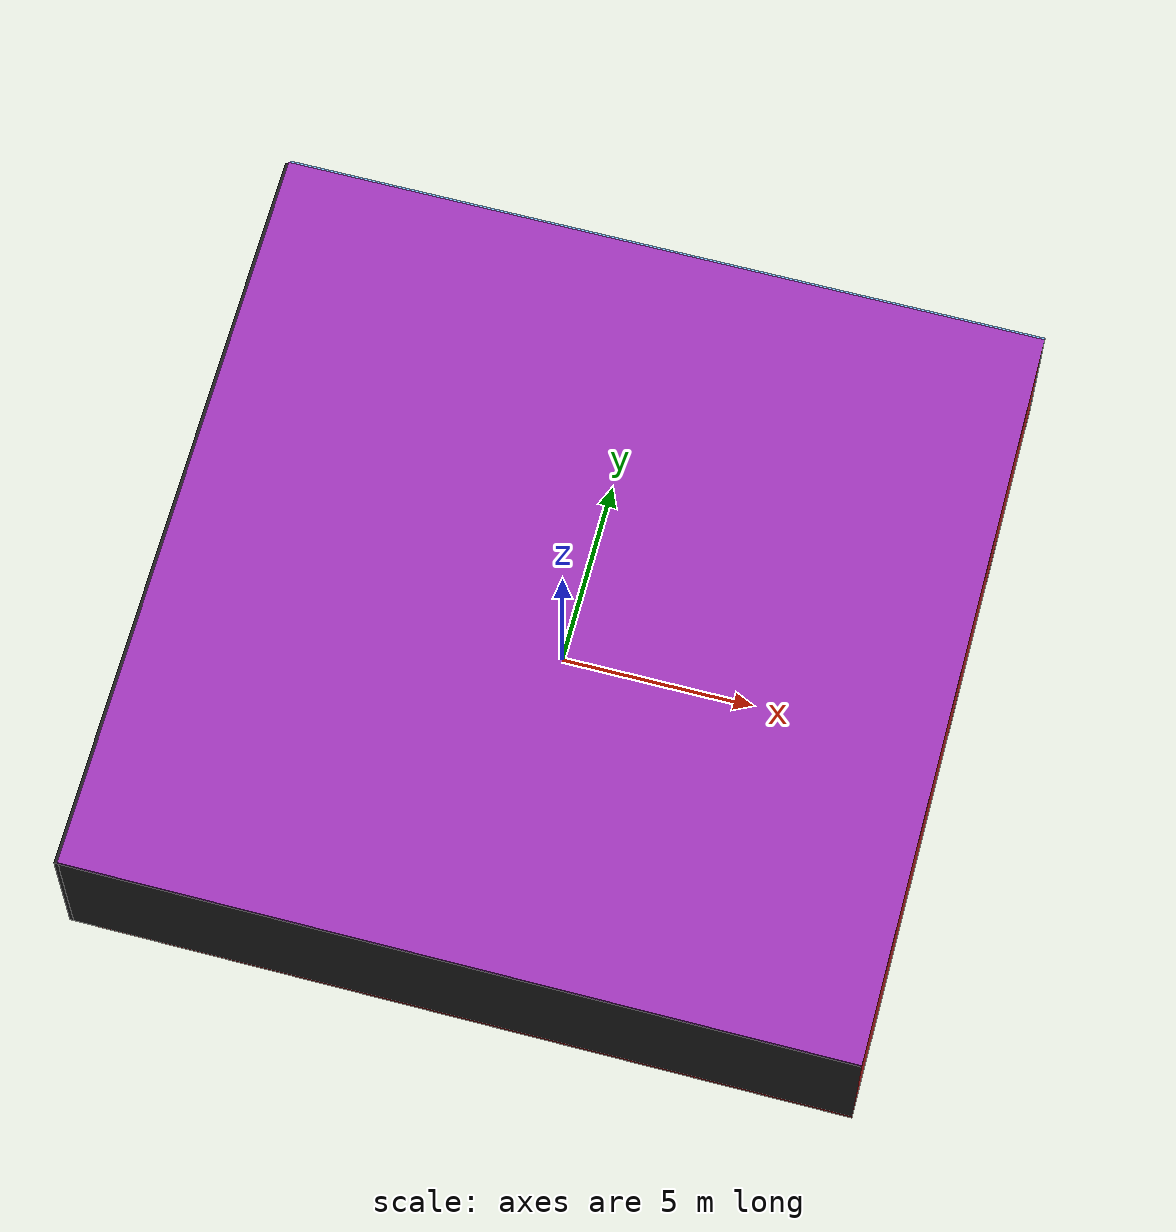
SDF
<sdf version="1.4">
 <world name="default">
  <physics type="ode">
   <max_step_size>0.001</max_step_size>
   <real_time_factor>1</real_time_factor>
   <real_time_update_rate>1000</real_time_update_rate>
   <gravity>0 0 -9.8</gravity>
  </physics>
  <scene><ambient>0.4 0.4 0.4 1</ambient><background>0.7 0.7 0.7 1</background><shadows>1</shadows></scene>
  <model name="Surrounding">
   <static>1</static>
   <link name="Ceiling">
    <collision name="Ceiling_Collision"><geometry><box><size>20 20 0.1</size></box></geometry></collision>
    <visual name="Ceiling_Visual">
     <geometry><box><size>20 20 0.1</size></box></geometry>
     <material>
      <script><uri>file://media/materials/scripts/gazebo.material</uri><name>Gazebo/PurpleGlow</name></script>
     </material>
    </visual>
    <pose>0 0 4.05 0 0 0</pose>
   </link>
   <link name="Wall_South">
    <collision name="Wall_South_Collision">
     <geometry><box><size>20 0 4</size></box></geometry>
     <pose>0 0 2 0 -0 0</pose>
    </collision>
    <visual name="Wall_South_Visual">
     <pose>0 0 2 0 -0 0</pose>
     <geometry><box><size>20 0 4</size></box></geometry>
     <material>
      <script><uri>file://media/materials/scripts/gazebo.material</uri><name>Gazebo/Black</name></script>
     </material>
    </visual>
    <velocity_decay><linear>0</linear><angular>0</angular></velocity_decay>
    <pose>0 -10 0 0 -0 0</pose>
   </link>
   <link name="Wall_East">
    <collision name="Wall_21_Collision">
     <geometry><box><size>20 0 4</size></box></geometry>
     <pose>0 0 2 0 -0 0</pose>
    </collision>
    <visual name="Wall_21_Visual">
     <pose>0 0 2 0 -0 0</pose>
     <geometry><box><size>20 0 4</size></box></geometry>
     <material>
      <script><uri>file://media/materials/scripts/gazebo.material</uri><name>Gazebo/RedGlow</name></script>
     </material>
    </visual>
    <velocity_decay><linear>0</linear><angular>0</angular></velocity_decay>
    <pose>10 0 0 0 -0 1.5708</pose>
   </link>
   <link name="Wall_North">
    <collision name="Wall_22_Collision">
     <geometry><box><size>20 0.2 4</size></box></geometry>
     <pose>0 0 2 0 -0 0</pose>
    </collision>
    <visual name="Wall_22_Visual">
     <pose>0 0 2 0 -0 0</pose>
     <geometry><box><size>20 0.2 4</size></box></geometry>
     <material>
      <script><uri>file://media/materials/scripts/gazebo.material</uri><name>Gazebo/SkyBlue</name></script>
     </material>
    </visual>
    <velocity_decay><linear>0</linear><angular>0</angular></velocity_decay>
    <pose>0 10 0 0 -0 0</pose>
   </link>
   <link name="Wall_West">
    <collision name="Wall_23_Collision">
     <geometry><box><size>20 0.2 4</size></box></geometry>
     <pose>0 0 2 0 -0 0</pose>
    </collision>
    <visual name="Wall_23_Visual">
     <pose>0 0 2 0 -0 0</pose>
     <geometry><box><size>20 0.2 4</size></box></geometry>
     <material>
      <script><uri>file://media/materials/scripts/gazebo.material</uri><name>Gazebo/Black</name></script>
     </material>
    </visual>
    <velocity_decay><linear>0</linear><angular>0</angular></velocity_decay>
    <pose>-10 0 0 0 0 -1.5708</pose>
   </link>
   <link name="Ground_link">
    <collision name="collision">
     <pose>0 0 .05 0 -0 0</pose>
     <geometry><box><size>20 20 0.1</size></box></geometry>
    </collision>
    <visual name="visual">
     <pose>0 0 .05 0 -0 0</pose>
     <geometry><box><size>20 20 0.1</size></box></geometry>
     <material>
      <script><uri>file://media/materials/scripts/gazebo.material</uri><name>Gazebo/RedGlow</name></script>
     </material>
    </visual>
   </link>
   <static>1</static>
  </model>
  <spherical_coordinates>
   <surface_model>EARTH_WGS84</surface_model>
   <latitude_deg>0</latitude_deg>
   <longitude_deg>0</longitude_deg>
   <elevation>0</elevation>
   <heading_deg>0</heading_deg>
  </spherical_coordinates>
  <light name="lightball_0" type="diffuse">
   <diffuse>0.8 0.8 0.8 1</diffuse>
   <specular>0.2 0.2 0.2 1</specular>
   <attenuation>
    <range>100</range>
    <constant>0.7</constant>
    <linear>0.01</linear>
    <quadratic>0.001</quadratic>
   </attenuation>
   <direction>-0.5 0.1 -0.9</direction>
   <pose>7.97460246561 6.23469628232 2.69223416319 0 0 0</pose>
  </light>
  <light name="lightball_1" type="diffuse">
   <diffuse>0.8 0.8 0.8 1</diffuse>
   <specular>0.2 0.2 0.2 1</specular>
   <attenuation>
    <range>100</range>
    <constant>0.7</constant>
    <linear>0.01</linear>
    <quadratic>0.001</quadratic>
   </attenuation>
   <direction>-0.5 0.1 -0.9</direction>
   <pose>1.8444668459 -8.16573629972 3.23439475557 0 0 0</pose>
  </light>
  <light name="lightball_2" type="diffuse">
   <diffuse>0.8 0.8 0.8 1</diffuse>
   <specular>0.2 0.2 0.2 1</specular>
   <attenuation>
    <range>100</range>
    <constant>0.7</constant>
    <linear>0.01</linear>
    <quadratic>0.001</quadratic>
   </attenuation>
   <direction>-0.5 0.1 -0.9</direction>
   <pose>8.55690765009 9.46899478958 1.76055183709 0 0 0</pose>
  </light>
  <light name="lightball_3" type="diffuse">
   <diffuse>0.8 0.8 0.8 1</diffuse>
   <specular>0.2 0.2 0.2 1</specular>
   <attenuation>
    <range>100</range>
    <constant>0.7</constant>
    <linear>0.01</linear>
    <quadratic>0.001</quadratic>
   </attenuation>
   <direction>-0.5 0.1 -0.9</direction>
   <pose>-1.47773260841 -6.49556357424 3.87501339237 0 0 0</pose>
  </light>
  <light name="lightball_4" type="diffuse">
   <diffuse>0.8 0.8 0.8 1</diffuse>
   <specular>0.2 0.2 0.2 1</specular>
   <attenuation>
    <range>100</range>
    <constant>0.7</constant>
    <linear>0.01</linear>
    <quadratic>0.001</quadratic>
   </attenuation>
   <direction>-0.5 0.1 -0.9</direction>
   <pose>-0.764244667186 -0.484512154037 2.5175582801 0 0 0</pose>
  </light>
  <light name="lightball_5" type="diffuse">
   <diffuse>0.8 0.8 0.8 1</diffuse>
   <specular>0.2 0.2 0.2 1</specular>
   <attenuation>
    <range>100</range>
    <constant>0.7</constant>
    <linear>0.01</linear>
    <quadratic>0.001</quadratic>
   </attenuation>
   <direction>-0.5 0.1 -0.9</direction>
   <pose>4.58718283209 5.26572300654 2.9380722815 0 0 0</pose>
  </light>
  <include><uri>model://cabinet</uri><pose>-3.6726443215 5.33851305602 0 0 0 2.36147974485</pose></include>
  <include>
   <uri>model://textured_shapes</uri>
   <pose>-2.24914321523 -3.34687859035 0 0 0 1.23155634637</pose>
  </include>
  <include>
   <uri>model://construction_cone</uri>
   <pose>0.422492158804 2.6275843147 0 0 0 3.10937409431</pose>
  </include>
  <include><uri>model://table</uri><pose>3.62726748003 6.62782581896 0 0 0 0.279286262653</pose></include>
  <include>
   <uri>model://robocup_3Dsim_goal</uri>
   <pose>7.31513607163 -8.28891087531 0 0 0 1.78845008925</pose>
  </include>
  <include>
   <uri>model://construction_cone</uri>
   <pose>6.46170960671 4.56995910236 0 0 0 2.51996394047</pose>
  </include>
 </world>
</sdf>

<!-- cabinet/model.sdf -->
<sdf version="1.5">
  <model name="cabinet">
    <static>true</static>
    <link name="cabinet_bottom_plate">
      <inertial>
        <pose>0 0 -1 0 0 0</pose>
        <inertia>
          <ixx>2.050000</ixx>
          <ixy>0</ixy>
          <ixz>0</ixz>
          <iyy>2.050000</iyy>
          <iyz>0</iyz>
          <izz>2.050000</izz>
        </inertia>
        <mass>25.000000</mass>
      </inertial>
      <collision name="cabinet_bottom_plate_geom">
        <pose>0 0 0.010000 0 0 0</pose>
        <geometry>
          <box>
            <size>0.450000 0.450000 0.020000</size>
          </box>
        </geometry>
      </collision>
      <visual name="cabinet_bottom_plate_geom_visual">
        <pose>0 0 0.010000 0 0 0</pose>
        <geometry>
          <box>
            <size>0.450000 0.450000 0.020000</size>
          </box>
        </geometry>
        <material>
          <script>
            <uri>model://media/materials/scripts/gazebo.material</uri>
            <name>Gazebo/Wood</name>
          </script>
        </material>
      </visual>
      <collision name="cabinet_bottom_plate_geom_cabinet_back_plate">
        <pose>0.235000 0 0.510000 0 0 0</pose>
        <geometry>
          <box>
            <size>0.020000 0.450000 1.020000</size>
          </box>
        </geometry>
      </collision>
      <visual name="cabinet_bottom_plate_geom_cabinet_back_plate_visual">
        <pose>0.235000 0 0.510000 0 0 0</pose>
        <geometry>
          <box>
            <size>0.020000 0.450000 1.020000</size>
          </box>
        </geometry>
        <material>
          <script>
            <uri>model://media/materials/scripts/gazebo.material</uri>
            <name>Gazebo/Wood</name>
          </script>
        </material>
      </visual>
      <collision name="cabinet_bottom_plate_geom_cabinet_left_plate">
        <pose>0 0.235000 0.510000 0 0 0</pose>
        <geometry>
          <box>
            <size>0.450000 0.020000 1.020000</size>
          </box>
        </geometry>
      </collision>
      <visual name="cabinet_bottom_plate_geom_cabinet_left_plate_visual">
        <pose>0 0.235000 0.510000 0 0 0</pose>
        <geometry>
          <box>
            <size>0.450000 0.020000 1.020000</size>
          </box>
        </geometry>
        <material>
          <script>
            <uri>model://media/materials/scripts/gazebo.material</uri>
            <name>Gazebo/Wood</name>
          </script>
        </material>
      </visual>
      <collision name="cabinet_bottom_plate_geom_cabinet_middle_plate">
        <pose>0 0 0.510000 0 0 0</pose>
        <geometry>
          <box>
            <size>0.450000 0.450000 0.020000</size>
          </box>
        </geometry>
      </collision>
      <visual name="cabinet_bottom_plate_geom_cabinet_middle_plate_visual">
        <pose>0 0 0.510000 0 0 0</pose>
        <geometry>
          <box>
            <size>0.450000 0.450000 0.020000</size>
          </box>
        </geometry>
        <material>
          <script>
            <uri>model://media/materials/scripts/gazebo.material</uri>
            <name>Gazebo/Wood</name>
          </script>
        </material>
      </visual>
      <collision name="cabinet_bottom_plate_geom_cabinet_right_plate">
        <pose>0 -0.235000 0.510000 0 0 0</pose>
        <geometry>
          <box>
            <size>0.450000 0.020000 1.020000</size>
          </box>
        </geometry>
      </collision>
      <visual name="cabinet_bottom_plate_geom_cabinet_right_plate_visual">
        <pose>0 -0.235000 0.510000 0 0 0</pose>
        <geometry>
          <box>
            <size>0.450000 0.020000 1.020000</size>
          </box>
        </geometry>
        <material>
          <script>
            <uri>model://media/materials/scripts/gazebo.material</uri>
            <name>Gazebo/Wood</name>
          </script>
        </material>
      </visual>
      <collision name="cabinet_bottom_plate_geom_cabinet_top_plate">
        <pose>0 0 1.010000 0 0 0</pose>
        <geometry>
          <box>
            <size>0.450000 0.450000 0.020000</size>
          </box>
        </geometry>
      </collision>
      <visual name="cabinet_bottom_plate_geom_cabinet_top_plate_visual">
        <pose>0 0 1.010000 0 0 0</pose>
        <geometry>
          <box>
            <size>0.450000 0.450000 0.020000</size>
          </box>
        </geometry>
        <material>
          <script>
            <uri>model://media/materials/scripts/gazebo.material</uri>
            <name>Gazebo/Wood</name>
          </script>
        </material>
      </visual>
    </link>
  </model>
</sdf>

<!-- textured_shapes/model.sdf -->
<sdf version="1.6">
  <model name="textured_shapes">
    <pose>0 0 0.5 0 0 0</pose>
    <link name="box">
      <pose>0 -1.5 0 0 0 0</pose>
      <collision name="collision">
        <geometry>
          <box>
            <size>1 1 1</size>
          </box>
        </geometry>
      </collision>
      <visual name="visual">
        <geometry>
          <box>
            <size>1 1 1</size>
          </box>
        </geometry>
        <material>
          <script>
            <uri>model://../model_source/models/textured_shapes/materials/scripts</uri>
            <uri>model://../model_source/models/textured_shapes/materials/textures</uri>
            <name>TexturedShape/Squares</name>
          </script>
        </material>
      </visual>
    </link>
    <link name="sphere">
      <collision name="collision">
        <geometry>
          <sphere>
            <radius>0.5</radius>
          </sphere>
        </geometry>
      </collision>
      <visual name="visual">
        <geometry>
          <sphere>
            <radius>0.5</radius>
          </sphere>
        </geometry>
        <material>
          <script>
            <uri>model://../model_source/models/textured_shapes/materials/scripts</uri>
            <uri>model://../model_source/models/textured_shapes/materials/textures</uri>
            <name>TexturedShape/Squares</name>
          </script>
        </material>
      </visual>
    </link>
    <link name="cylinder">
      <pose>0 1.5 0 0 0 0</pose>
      <collision name="collision">
        <geometry>
          <cylinder>
            <radius>0.5</radius>
            <length>1</length>
          </cylinder>
        </geometry>
      </collision>
      <visual name="visual">
        <geometry>
          <cylinder>
            <radius>0.5</radius>
            <length>1</length>
          </cylinder>
        </geometry>
        <material>
          <script>
            <uri>model://../model_source/models/textured_shapes/materials/scripts</uri>
            <uri>model://../model_source/models/textured_shapes/materials/textures</uri>
            <name>TexturedShape/Squares</name>
          </script>
        </material>
      </visual>
    </link>
  </model>
</sdf>

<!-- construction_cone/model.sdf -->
<sdf version="1.5">
  <model name="Construction Cone">
    <link name="link">
      <collision name="collision">
        <geometry>
          <mesh>
            <scale>10 10 10</scale>
            <uri>file://isr-testbed/construction_cone/meshes/construction_cone.dae</uri>
          </mesh>
        </geometry>
      </collision>
      <visual name="visual">
        <geometry>
          <mesh>
            <scale>10 10 10</scale>
            <uri>file://isr-testbed/construction_cone/meshes/construction_cone.dae</uri>
          </mesh>
        </geometry>
      </visual>
    </link>
  </model>
</sdf>

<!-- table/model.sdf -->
<sdf version="1.5">
  <model name="table">
    <static>true</static>
    <link name="link">
      <collision name="surface">
        <pose>0 0 1.0 0 0 0</pose>
        <geometry>
          <box>
            <size>1.5 0.8 0.03</size>
          </box>
        </geometry>
        <surface>
          <friction>
            <ode>
              <mu>0.6</mu>
              <mu2>0.6</mu2>
            </ode>
          </friction>
        </surface>
      </collision>
      <visual name="visual1">
        <pose>0 0 1.0 0 0 0</pose>
        <geometry>
          <box>
            <size>1.5 0.8 0.03</size>
          </box>
        </geometry>
        <material>
          <script>
            <uri>model://media/materials/scripts/gazebo.material</uri>
            <name>Gazebo/Wood</name>
          </script>
        </material>
      </visual>
      <collision name="front_left_leg">
        <pose>0.68 0.38 0.5 0 0 0</pose>
        <geometry>
          <cylinder>
            <radius>0.02</radius>
            <length>1.0</length>
          </cylinder>
        </geometry>
      </collision>
      <visual name="front_left_leg">
        <pose>0.68 0.38 0.5 0 0 0</pose>
        <geometry>
          <cylinder>
            <radius>0.02</radius>
            <length>1.0</length>
          </cylinder>
        </geometry>
        <material>
          <script>
            <uri>model://media/materials/scripts/gazebo.material</uri>
            <name>Gazebo/Grey</name>
          </script>
        </material>
      </visual>
      <collision name="front_right_leg">
        <pose>0.68 -0.38 0.5 0 0 0</pose>
        <geometry>
          <cylinder>
            <radius>0.02</radius>
            <length>1.0</length>
          </cylinder>
        </geometry>
      </collision>
      <visual name="front_right_leg">
        <pose>0.68 -0.38 0.5 0 0 0</pose>
        <geometry>
          <cylinder>
            <radius>0.02</radius>
            <length>1.0</length>
          </cylinder>
        </geometry>
        <material>
          <script>
            <uri>model://media/materials/scripts/gazebo.material</uri>
            <name>Gazebo/Grey</name>
          </script>
        </material>
      </visual>
      <collision name="back_right_leg">
        <pose>-0.68 -0.38 0.5 0 0 0</pose>
        <geometry>
          <cylinder>
            <radius>0.02</radius>
            <length>1.0</length>
          </cylinder>
        </geometry>
      </collision>
      <visual name="back_right_leg">
        <pose>-0.68 -0.38 0.5 0 0 0</pose>
        <geometry>
          <cylinder>
            <radius>0.02</radius>
            <length>1.0</length>
          </cylinder>
        </geometry>
        <material>
          <script>
            <uri>model://media/materials/scripts/gazebo.material</uri>
            <name>Gazebo/Grey</name>
          </script>
        </material>
      </visual>
      <collision name="back_left_leg">
        <pose>-0.68 0.38 0.5 0 0 0</pose>
        <geometry>
          <cylinder>
            <radius>0.02</radius>
            <length>1.0</length>
          </cylinder>
        </geometry>
      </collision>
      <visual name="back_left_leg">
        <pose>-0.68 0.38 0.5 0 0 0</pose>
        <geometry>
          <cylinder>
            <radius>0.02</radius>
            <length>1.0</length>
          </cylinder>
        </geometry>
        <material>
          <script>
            <uri>model://media/materials/scripts/gazebo.material</uri>
            <name>Gazebo/Grey</name>
          </script>
        </material>
      </visual>
    </link>
  </model>
</sdf>

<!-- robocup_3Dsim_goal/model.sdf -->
<sdf version="1.5">
  <model name="robocup_3d_goal">
    <static>true</static>
    <link name="left_post">
      <pose>0 1.05 0.45 0 0 0</pose>
      <collision name="collision">
        <geometry>
          <cylinder>
            <radius>0.05</radius>
            <length>0.9</length>
          </cylinder>
        </geometry>
      </collision>
      <visual name="visual">
        <geometry>
          <cylinder>
            <radius>0.05</radius>
            <length>0.9</length>
          </cylinder>
        </geometry>
        <material>
          <script>
            <uri>file://media/materials/scripts/gazebo.material</uri>
            <name>Gazebo/ZincYellow</name>
          </script>
        </material>
      </visual>
    </link>
    <link name="left_support_horiz_lower">
      <pose>0.30 1.05 0.01 0 0 0</pose>
      <collision name="collision">
        <geometry>
          <box>
            <size>0.50 0.02 0.02</size>
          </box>
        </geometry>
      </collision>
      <visual name="visual">
        <geometry>
          <box>
            <size>0.50 0.02 0.02</size>
          </box>
        </geometry>
        <material>
          <script>
            <uri>file://media/materials/scripts/gazebo.material</uri>
            <name>Gazebo/White</name>
          </script>
        </material>
      </visual>
    </link>
    <link name="left_support_horiz_upper">
      <pose>0.30 1.05 0.79 0 0 0</pose>
      <collision name="collision">
        <geometry>
          <box>
            <size>0.50 0.02 0.02</size>
          </box>
        </geometry>
      </collision>
      <visual name="visual">
        <geometry>
          <box>
            <size>0.50 0.02 0.02</size>
          </box>
        </geometry>
        <material>
          <script>
            <uri>file://media/materials/scripts/gazebo.material</uri>
            <name>Gazebo/White</name>
          </script>
        </material>
      </visual>
    </link>
    <link name="left_support_vertical">
      <pose>0.56 1.05 0.4 0 1.5708 0</pose>
      <collision name="collision">
        <geometry>
          <box>
            <size>0.80 0.02 0.02</size>
          </box>
        </geometry>
      </collision>
      <visual name="visual">
        <geometry>
          <box>
            <size>0.80 0.02 0.02</size>
          </box>
        </geometry>
        <material>
          <script>
            <uri>file://media/materials/scripts/gazebo.material</uri>
            <name>Gazebo/White</name>
          </script>
        </material>
      </visual>
    </link>
    <link name="right_support_horiz_lower">
      <pose>0.30 -1.05 0.01 0 0 0</pose>
      <collision name="collision">
        <geometry>
          <box>
            <size>0.50 0.02 0.02</size>
          </box>
        </geometry>
      </collision>
      <visual name="visual">
        <geometry>
          <box>
            <size>0.50 0.02 0.02</size>
          </box>
        </geometry>
        <material>
          <script>
            <uri>file://media/materials/scripts/gazebo.material</uri>
            <name>Gazebo/White</name>
          </script>
        </material>
      </visual>
    </link>
    <link name="right_support_horiz_upper">
      <pose>0.30 -1.05 0.79 0 0 0</pose>
      <collision name="collision">
        <geometry>
          <box>
            <size>0.50 0.02 0.02</size>
          </box>
        </geometry>
      </collision>
      <visual name="visual">
        <geometry>
          <box>
            <size>0.50 0.02 0.02</size>
          </box>
        </geometry>
        <material>
          <script>
            <uri>file://media/materials/scripts/gazebo.material</uri>
            <name>Gazebo/White</name>
          </script>
        </material>
      </visual>
    </link>
    <link name="right_support_vertical">
      <pose>0.56 -1.05 0.4 0 1.5708 0</pose>
      <collision name="collision">
        <geometry>
          <box>
            <size>0.80 0.02 0.02</size>
          </box>
        </geometry>
      </collision>
      <visual name="visual">
        <geometry>
          <box>
            <size>0.80 0.02 0.02</size>
          </box>
        </geometry>
        <material>
          <script>
            <uri>file://media/materials/scripts/gazebo.material</uri>
            <name>Gazebo/White</name>
          </script>
        </material>
      </visual>
    </link>
    <link name="center_support_horiz_lower">
      <pose>0.56 0 0.01 0 1.5708 0</pose>
      <collision name="collision">
        <geometry>
          <box>
            <size>0.02 2.08 0.02</size>
          </box>
        </geometry>
      </collision>
      <visual name="visual">
        <geometry>
          <box>
            <size>0.02 2.08 0.02</size>
          </box>
        </geometry>
        <material>
          <script>
            <uri>file://media/materials/scripts/gazebo.material</uri>
            <name>Gazebo/White</name>
          </script>
        </material>
      </visual>
    </link>
    <link name="center_support_horiz_upper">
      <pose>0.56 0 0.79 0 1.5708 0</pose>
      <collision name="collision">
        <geometry>
          <box>
            <size>0.02 2.08 0.02</size>
          </box>
        </geometry>
      </collision>
      <visual name="visual">
        <geometry>
          <box>
            <size>0.02 2.08 0.02</size>
          </box>
        </geometry>
        <material>
          <script>
            <uri>file://media/materials/scripts/gazebo.material</uri>
            <name>Gazebo/White</name>
          </script>
        </material>
      </visual>
    </link>
    <link name="right_post">
      <pose>0 -1.05 0.45 0 0 0</pose>
      <collision name="collision">
        <geometry>
          <cylinder>
            <radius>0.05</radius>
            <length>0.9</length>
          </cylinder>
        </geometry>
      </collision>
      <visual name="visual">
        <geometry>
          <cylinder>
            <radius>0.05</radius>
            <length>0.9</length>
          </cylinder>
        </geometry>
        <material>
          <script>
            <uri>file://media/materials/scripts/gazebo.material</uri>
            <name>Gazebo/ZincYellow</name>
          </script>
        </material>
      </visual>
    </link>
    <link name="crossbar">
      <pose>0 0 0.85 1.57 1.57 0</pose>
      <collision name="collision">
        <geometry>
          <cylinder>
            <radius>0.05</radius>
            <length>2.0</length>
          </cylinder>
        </geometry>
      </collision>
      <visual name="visual">
        <geometry>
          <cylinder>
            <radius>0.05</radius>
            <length>2.0</length>
          </cylinder>
        </geometry>
        <material>
          <script>
            <uri>file://media/materials/scripts/gazebo.material</uri>
            <name>Gazebo/ZincYellow</name>
          </script>
        </material>
      </visual>
    </link>
    <link name="center_net">
      <pose>0.56 0 0.40 0 0 0</pose>
      <collision name="collision">
        <geometry>
          <box>
            <size>0.01 2.1 0.80</size>
          </box>
        </geometry>
      </collision>
      <visual name="visual">
        <geometry>
          <box>
            <size>0.01 2.1 0.80</size>
          </box>
        </geometry>
        <material>
          <script>
            <uri>model://../model_source/models/robocup09_spl_field/materials/scripts/</uri>
            <uri>model://../model_source/models/robocup09_spl_field/materials/textures/</uri>
            <name>RoboCup/Net</name>
          </script>
        </material>
      </visual>
    </link>
    <link name="left_net">
      <pose>0.30 1.05 0.40 0 0 0</pose>
      <collision name="collision">
        <geometry>
          <box>
            <size>0.50 0.01 0.76</size>
          </box>
        </geometry>
      </collision>
      <visual name="visual">
        <geometry>
          <box>
            <size>0.50 0.01 0.76</size>
          </box>
        </geometry>
        <material>
          <script>
            <uri>model://../model_source/models/robocup09_spl_field/materials/scripts/</uri>
            <uri>model://../model_source/models/robocup09_spl_field/materials/textures/</uri>
            <name>RoboCup/Net</name>
          </script>
        </material>
      </visual>
    </link>
    <link name="right_net">
      <pose>0.30 -1.05 0.40 0 0 0</pose>
      <collision name="collision">
        <geometry>
          <box>
            <size>0.50 0.01 0.76</size>
          </box>
        </geometry>
      </collision>
      <visual name="visual">
        <geometry>
          <box>
            <size>0.50 0.01 0.76</size>
          </box>
        </geometry>
        <material>
          <script>
            <uri>model://../model_source/models/robocup09_spl_field/materials/scripts/</uri>
            <uri>model://../model_source/models/robocup09_spl_field/materials/textures/</uri>
            <name>RoboCup/Net</name>
          </script>
        </material>
      </visual>
    </link>
  </model>
</sdf>
